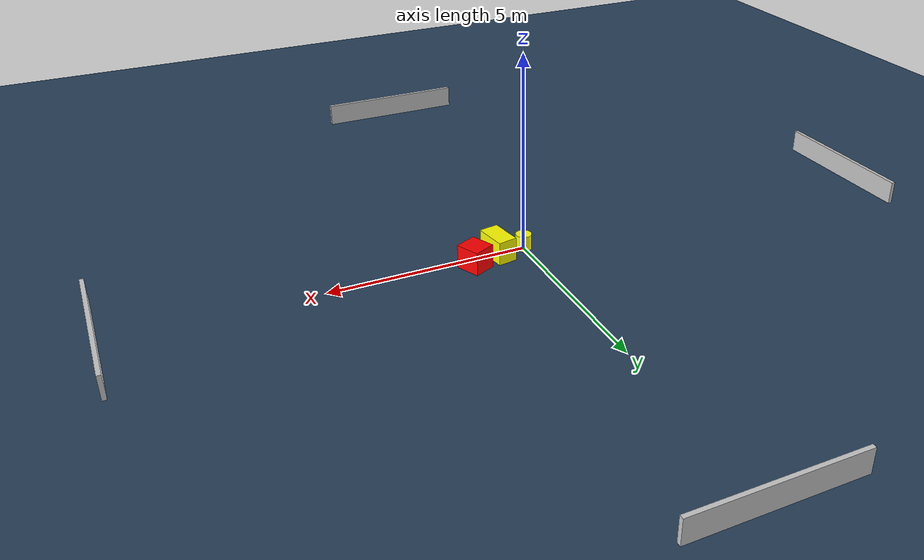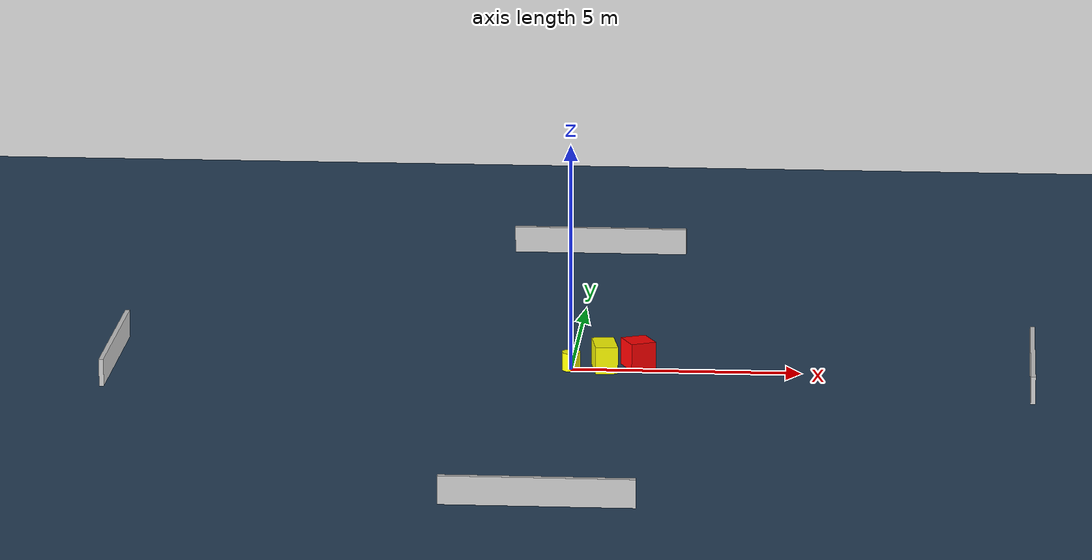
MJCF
<?xml version="1.0" ?>
<mujoco model="generated_environment">
  <option timestep="0.01" integrator="RK4" cone="elliptic"/>
  <default>
    <geom density="1"/>
  </default>
  <asset>
    <texture builtin="gradient" height="3072" name="skybox" rgb1="0.3 0.5 0.7" rgb2="0 0 0" type="skybox" width="512"/>
    <texture builtin="checker" height="300" name="groundplane" rgb1="0.2 0.3 0.4" rgb2="0.1 0.2 0.3" type="2d" width="300"/>
    <material name="groundplane" reflectance="0.2" texrepeat="5 5" texture="groundplane"/>
  </asset>
  <worldbody>
    <light dir="0 0 -1" directional="true" pos="0 0 1.5"/>
    <geom condim="3" friction="0.5 0.005 0.001" material="groundplane" name="floor" pos="0 0 0" size="0 0 0.05" type="plane"/>
    <body name="walls">
      <geom name="wall_1" condim="4" pos="-10.0 0.0 0.3" rgba="0.800000011920929 0.800000011920929 0.800000011920929 1.0" size="0.05 2.0 0.3" type="box"/>
      <geom name="wall_2" condim="4" pos="10.0 0.0 0.3" rgba="0.800000011920929 0.800000011920929 0.800000011920929 1.0" size="0.05 2.0 0.3" type="box"/>
      <geom name="wall_3" condim="4" pos="0.0 -10.0 0.3" rgba="0.800000011920929 0.800000011920929 0.800000011920929 1.0" size="2.0 0.05 0.3" type="box"/>
      <geom name="wall_4" condim="4" pos="0.0 10.0 0.3" rgba="0.800000011920929 0.800000011920929 0.800000011920929 1.0" size="2.0 0.05 0.3" type="box"/>
    </body>
    <body name="robot">
      <joint name="joint_x" type="slide" pos="0 0 0" axis="1 0 0"/>
      <joint name="joint_y" type="slide" pos="0 0 0" axis="0 1 0"/>
      <geom name="robot" type="cylinder" pos="0.0 0.0 0.2" size="0.2 0.2 0.0" mass="5.0" friction="1.0 0.005 0.0001" condim="4" rgba="1.0 1.0 0.0 1.0"/>
    </body>
    <body name="obstacle_1_movable">
      <geom name="obstacle_1_movable" condim="4" pos="0.7250018136530569 0.08572112324482709 0.3" euler="0 0 99.82905500030148" friction="0.0 0.005 0.001" rgba="1.0 1.0 0.0 1.0" size="0.41764488906994507 0.24247926098615374 0.3" type="box" mass="0.1"/>
      <joint type="free"/>
    </body>
    <body name="obstacle_2_static">
      <geom name="obstacle_2_static" condim="4" pos="1.4432859007922134 0.352573341113518 0.3" euler="0 0 294.9810511905468" friction="0.0 0.005 0.001" rgba="1.0 0.0 0.0 1.0" size="0.3122416570746702 0.28291933549161463 0.3" type="box"/>
    </body>
  </worldbody>
  <actuator>
    <motor name="actuator_x" joint="joint_x" gear="1" ctrlrange="-1 1"/>
    <motor name="actuator_y" joint="joint_y" gear="1" ctrlrange="-1 1"/>
  </actuator>
</mujoco>
